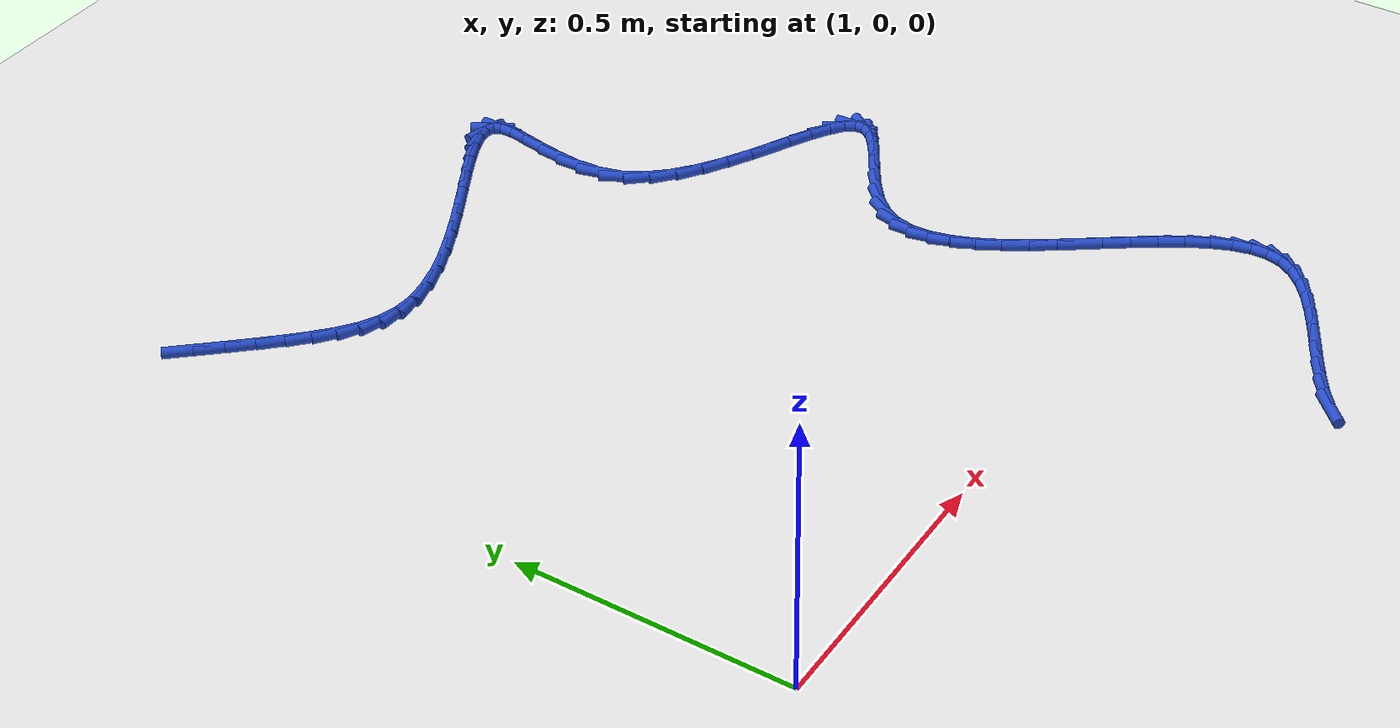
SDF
<sdf version="1.6">
 <world name="default">
  <model name="ground_plane">
   <static>1</static>
   <link name="link">
    <collision name="collision">
     <geometry><plane><normal>0 0 1</normal><size>100 100</size></plane></geometry>
     <surface><friction><ode><mu>100</mu><mu2>50</mu2></ode></friction></surface>
    </collision>
    <visual name="visual">
     <cast_shadows>0</cast_shadows>
     <geometry><plane><normal>0 0 1</normal><size>100 100</size></plane></geometry>
     <material>
      <script><uri>file://media/materials/scripts/gazebo.material</uri><name>Gazebo/WhiteGlow</name></script>
     </material>
    </visual>
   </link>
  </model>
  <model name="line">
   <link name="link_63">
    <pose>1.1196661437695878 1.259780612531161 0.01 0 1.57 -0.8517273252612294</pose>
    <collision name="collision">
     <geometry><cylinder><radius>0.01</radius><length>0.08</length></cylinder></geometry>
    </collision>
    <visual name="visual">
     <material>
      <script><name>Gazebo/Blue</name><uri>file://media/materials/scripts/gazebo.material</uri></script>
     </material>
     <geometry><cylinder><radius>0.01</radius><length>0.08</length></cylinder></geometry>
    </visual>
   </link>
   <link name="link_64">
    <pose>1.1540906207296566 1.22045732162636 0.01 0 1.57 -0.8469313317519686</pose>
    <collision name="collision">
     <geometry><cylinder><radius>0.01</radius><length>0.08</length></cylinder></geometry>
    </collision>
    <visual name="visual">
     <material>
      <script><name>Gazebo/Blue</name><uri>file://media/materials/scripts/gazebo.material</uri></script>
     </material>
     <geometry><cylinder><radius>0.01</radius><length>0.08</length></cylinder></geometry>
    </visual>
   </link>
   <link name="link_65">
    <pose>1.1886756391678166 1.181330869631078 0.01 0 1.57 -0.8315641580807647</pose>
    <collision name="collision">
     <geometry><cylinder><radius>0.01</radius><length>0.08</length></cylinder></geometry>
    </collision>
    <visual name="visual">
     <material>
      <script><name>Gazebo/Blue</name><uri>file://media/materials/scripts/gazebo.material</uri></script>
     </material>
     <geometry><cylinder><radius>0.01</radius><length>0.08</length></cylinder></geometry>
    </visual>
   </link>
   <link name="link_66">
    <pose>1.2228370313096963 1.1438601588218202 0.01 0 1.57 -0.8031941429486126</pose>
    <collision name="collision">
     <geometry><cylinder><radius>0.01</radius><length>0.08</length></cylinder></geometry>
    </collision>
    <visual name="visual">
     <material>
      <script><name>Gazebo/Blue</name><uri>file://media/materials/scripts/gazebo.material</uri></script>
     </material>
     <geometry><cylinder><radius>0.01</radius><length>0.08</length></cylinder></geometry>
    </visual>
   </link>
   <link name="link_67">
    <pose>1.255991949229332 1.1095036826678506 0.01 0 1.57 -0.7515997567067627</pose>
    <collision name="collision">
     <geometry><cylinder><radius>0.01</radius><length>0.08</length></cylinder></geometry>
    </collision>
    <visual name="visual">
     <material>
      <script><name>Gazebo/Blue</name><uri>file://media/materials/scripts/gazebo.material</uri></script>
     </material>
     <geometry><cylinder><radius>0.01</radius><length>0.08</length></cylinder></geometry>
    </visual>
   </link>
   <link name="link_68">
    <pose>1.288010272824801 1.0795797076148563 0.01 0 1.57 -0.6558354673367464</pose>
    <collision name="collision">
     <geometry><cylinder><radius>0.01</radius><length>0.08</length></cylinder></geometry>
    </collision>
    <visual name="visual">
     <material>
      <script><name>Gazebo/Blue</name><uri>file://media/materials/scripts/gazebo.material</uri></script>
     </material>
     <geometry><cylinder><radius>0.01</radius><length>0.08</length></cylinder></geometry>
    </visual>
   </link>
   <link name="link_69">
    <pose>1.3198740438421646 1.0550620212905804 0.01 0 1.57 -0.5055757949903101</pose>
    <collision name="collision">
     <geometry><cylinder><radius>0.01</radius><length>0.08</length></cylinder></geometry>
    </collision>
    <visual name="visual">
     <material>
      <script><name>Gazebo/Blue</name><uri>file://media/materials/scripts/gazebo.material</uri></script>
     </material>
     <geometry><cylinder><radius>0.01</radius><length>0.08</length></cylinder></geometry>
    </visual>
   </link>
   <link name="link_70">
    <pose>1.3527329929591088 1.0368724716837165 0.01 0 1.57 -0.30290723312077716</pose>
    <collision name="collision">
     <geometry><cylinder><radius>0.01</radius><length>0.08</length></cylinder></geometry>
    </collision>
    <visual name="visual">
     <material>
      <script><name>Gazebo/Blue</name><uri>file://media/materials/scripts/gazebo.material</uri></script>
     </material>
     <geometry><cylinder><radius>0.01</radius><length>0.08</length></cylinder></geometry>
    </visual>
   </link>
   <link name="link_71">
    <pose>1.3877368508533174 1.0259329067829583 0.01 0 1.57 -0.07330064190420355</pose>
    <collision name="collision">
     <geometry><cylinder><radius>0.01</radius><length>0.08</length></cylinder></geometry>
    </collision>
    <visual name="visual">
     <material>
      <script><name>Gazebo/Blue</name><uri>file://media/materials/scripts/gazebo.material</uri></script>
     </material>
     <geometry><cylinder><radius>0.01</radius><length>0.08</length></cylinder></geometry>
    </visual>
   </link>
   <link name="link_72">
    <pose>1.4259983332006394 1.0231232817397402 0.01 0 1.57 0.12258889698481831</pose>
    <collision name="collision">
     <geometry><cylinder><radius>0.01</radius><length>0.08</length></cylinder></geometry>
    </collision>
    <visual name="visual">
     <material>
      <script><name>Gazebo/Blue</name><uri>file://media/materials/scripts/gazebo.material</uri></script>
     </material>
     <geometry><cylinder><radius>0.01</radius><length>0.08</length></cylinder></geometry>
    </visual>
   </link>
   <link name="link_73">
    <pose>1.4676904681079848 1.0282600321473152 0.01 0 1.57 0.2598197769352194</pose>
    <collision name="collision">
     <geometry><cylinder><radius>0.01</radius><length>0.08</length></cylinder></geometry>
    </collision>
    <visual name="visual">
     <material>
      <script><name>Gazebo/Blue</name><uri>file://media/materials/scripts/gazebo.material</uri></script>
     </material>
     <geometry><cylinder><radius>0.01</radius><length>0.08</length></cylinder></geometry>
    </visual>
   </link>
   <link name="link_74">
    <pose>1.5119947275682937 1.0400373702609884 0.01 0 1.57 0.35475852176778405</pose>
    <collision name="collision">
     <geometry><cylinder><radius>0.01</radius><length>0.08</length></cylinder></geometry>
    </collision>
    <visual name="visual">
     <material>
      <script><name>Gazebo/Blue</name><uri>file://media/materials/scripts/gazebo.material</uri></script>
     </material>
     <geometry><cylinder><radius>0.01</radius><length>0.08</length></cylinder></geometry>
    </visual>
   </link>
   <link name="link_75">
    <pose>1.558045185475301 1.0570958641172918 0.01 0 1.57 0.4203950614659597</pose>
    <collision name="collision">
     <geometry><cylinder><radius>0.01</radius><length>0.08</length></cylinder></geometry>
    </collision>
    <visual name="visual">
     <material>
      <script><name>Gazebo/Blue</name><uri>file://media/materials/scripts/gazebo.material</uri></script>
     </material>
     <geometry><cylinder><radius>0.01</radius><length>0.08</length></cylinder></geometry>
    </visual>
   </link>
   <link name="link_76">
    <pose>1.6049759157227415 1.0780760817527586 0.01 0 1.57 0.4648392906981698</pose>
    <collision name="collision">
     <geometry><cylinder><radius>0.01</radius><length>0.08</length></cylinder></geometry>
    </collision>
    <visual name="visual">
     <material>
      <script><name>Gazebo/Blue</name><uri>file://media/materials/scripts/gazebo.material</uri></script>
     </material>
     <geometry><cylinder><radius>0.01</radius><length>0.08</length></cylinder></geometry>
    </visual>
   </link>
   <link name="link_77">
    <pose>1.6519209922043516 1.1016185912039218 0.01 0 1.57 0.49269249067421395</pose>
    <collision name="collision">
     <geometry><cylinder><radius>0.01</radius><length>0.08</length></cylinder></geometry>
    </collision>
    <visual name="visual">
     <material>
      <script><name>Gazebo/Blue</name><uri>file://media/materials/scripts/gazebo.material</uri></script>
     </material>
     <geometry><cylinder><radius>0.01</radius><length>0.08</length></cylinder></geometry>
    </visual>
   </link>
   <link name="link_78">
    <pose>1.6980144888138644 1.1263639605073132 0.01 0 1.57 0.5059866009592399</pose>
    <collision name="collision">
     <geometry><cylinder><radius>0.01</radius><length>0.08</length></cylinder></geometry>
    </collision>
    <visual name="visual">
     <material>
      <script><name>Gazebo/Blue</name><uri>file://media/materials/scripts/gazebo.material</uri></script>
     </material>
     <geometry><cylinder><radius>0.01</radius><length>0.08</length></cylinder></geometry>
    </visual>
   </link>
   <link name="link_79">
    <pose>1.7423904794450153 1.1509527576994658 0.01 0 1.57 0.5044379558841604</pose>
    <collision name="collision">
     <geometry><cylinder><radius>0.01</radius><length>0.08</length></cylinder></geometry>
    </collision>
    <visual name="visual">
     <material>
      <script><name>Gazebo/Blue</name><uri>file://media/materials/scripts/gazebo.material</uri></script>
     </material>
     <geometry><cylinder><radius>0.01</radius><length>0.08</length></cylinder></geometry>
    </visual>
   </link>
   <link name="link_80">
    <pose>1.7841830379915395 1.174025550816912 0.01 0 1.57 0.48481944742248434</pose>
    <collision name="collision">
     <geometry><cylinder><radius>0.01</radius><length>0.08</length></cylinder></geometry>
    </collision>
    <visual name="visual">
     <material>
      <script><name>Gazebo/Blue</name><uri>file://media/materials/scripts/gazebo.material</uri></script>
     </material>
     <geometry><cylinder><radius>0.01</radius><length>0.08</length></cylinder></geometry>
    </visual>
   </link>
   <link name="link_81">
    <pose>1.8225262383471723 1.1942229078961848 0.01 0 1.57 0.43862331797547005</pose>
    <collision name="collision">
     <geometry><cylinder><radius>0.01</radius><length>0.08</length></cylinder></geometry>
    </collision>
    <visual name="visual">
     <material>
      <script><name>Gazebo/Blue</name><uri>file://media/materials/scripts/gazebo.material</uri></script>
     </material>
     <geometry><cylinder><radius>0.01</radius><length>0.08</length></cylinder></geometry>
    </visual>
   </link>
   <link name="link_82">
    <pose>1.8565541544056472 1.210185396973816 0.01 0 1.57 0.3450452889099674</pose>
    <collision name="collision">
     <geometry><cylinder><radius>0.01</radius><length>0.08</length></cylinder></geometry>
    </collision>
    <visual name="visual">
     <material>
      <script><name>Gazebo/Blue</name><uri>file://media/materials/scripts/gazebo.material</uri></script>
     </material>
     <geometry><cylinder><radius>0.01</radius><length>0.08</length></cylinder></geometry>
    </visual>
   </link>
   <link name="link_83">
    <pose>1.8854008600607002 1.2205535860863392 0.01 0 1.57 0.14865495063836787</pose>
    <collision name="collision">
     <geometry><cylinder><radius>0.01</radius><length>0.08</length></cylinder></geometry>
    </collision>
    <visual name="visual">
     <material>
      <script><name>Gazebo/Blue</name><uri>file://media/materials/scripts/gazebo.material</uri></script>
     </material>
     <geometry><cylinder><radius>0.01</radius><length>0.08</length></cylinder></geometry>
    </visual>
   </link>
   <link name="link_84">
    <pose>1.9082004292060661 1.2239680432702866 0.01 0 1.57 -0.2991055184764286</pose>
    <collision name="collision">
     <geometry><cylinder><radius>0.01</radius><length>0.08</length></cylinder></geometry>
    </collision>
    <visual name="visual">
     <material>
      <script><name>Gazebo/Blue</name><uri>file://media/materials/scripts/gazebo.material</uri></script>
     </material>
     <geometry><cylinder><radius>0.01</radius><length>0.08</length></cylinder></geometry>
    </visual>
   </link>
   <link name="link_85">
    <pose>1.9240869357354793 1.2190693365621903 0.01 0 1.57 -1.062956345246637</pose>
    <collision name="collision">
     <geometry><cylinder><radius>0.01</radius><length>0.08</length></cylinder></geometry>
    </collision>
    <visual name="visual">
     <material>
      <script><name>Gazebo/Blue</name><uri>file://media/materials/scripts/gazebo.material</uri></script>
     </material>
     <geometry><cylinder><radius>0.01</radius><length>0.08</length></cylinder></geometry>
    </visual>
   </link>
   <link name="link_86">
    <pose>1.9321956249995975 1.2044991545221495 0.01 0 1.57 -1.5571422949638465</pose>
    <collision name="collision">
     <geometry><cylinder><radius>0.01</radius><length>0.08</length></cylinder></geometry>
    </collision>
    <visual name="visual">
     <material>
      <script><name>Gazebo/Blue</name><uri>file://media/materials/scripts/gazebo.material</uri></script>
     </material>
     <geometry><cylinder><radius>0.01</radius><length>0.08</length></cylinder></geometry>
    </visual>
   </link>
   <link name="link_87">
    <pose>1.9325337994138625 1.1797333269181722 0.01 0 1.57 1.4209852962568719</pose>
    <collision name="collision">
     <geometry><cylinder><radius>0.01</radius><length>0.08</length></cylinder></geometry>
    </collision>
    <visual name="visual">
     <material>
      <script><name>Gazebo/Blue</name><uri>file://media/materials/scripts/gazebo.material</uri></script>
     </material>
     <geometry><cylinder><radius>0.01</radius><length>0.08</length></cylinder></geometry>
    </visual>
   </link>
   <link name="link_88">
    <pose>1.9275266154406632 1.1465604125548285 0.01 0 1.57 1.3823745064760786</pose>
    <collision name="collision">
     <geometry><cylinder><radius>0.01</radius><length>0.08</length></cylinder></geometry>
    </collision>
    <visual name="visual">
     <material>
      <script><name>Gazebo/Blue</name><uri>file://media/materials/scripts/gazebo.material</uri></script>
     </material>
     <geometry><cylinder><radius>0.01</radius><length>0.08</length></cylinder></geometry>
    </visual>
   </link>
   <link name="link_89">
    <pose>1.9200148366346474 1.107166507296994 0.01 0 1.57 1.4070487390612</pose>
    <collision name="collision">
     <geometry><cylinder><radius>0.01</radius><length>0.08</length></cylinder></geometry>
    </collision>
    <visual name="visual">
     <material>
      <script><name>Gazebo/Blue</name><uri>file://media/materials/scripts/gazebo.material</uri></script>
     </material>
     <geometry><cylinder><radius>0.01</radius><length>0.08</length></cylinder></geometry>
    </visual>
   </link>
   <link name="link_90">
    <pose>1.912839226550463 1.0637377070095435 0.01 0 1.57 1.4827101570873344</pose>
    <collision name="collision">
     <geometry><cylinder><radius>0.01</radius><length>0.08</length></cylinder></geometry>
    </collision>
    <visual name="visual">
     <material>
      <script><name>Gazebo/Blue</name><uri>file://media/materials/scripts/gazebo.material</uri></script>
     </material>
     <geometry><cylinder><radius>0.01</radius><length>0.08</length></cylinder></geometry>
    </visual>
   </link>
   <link name="link_91">
    <pose>1.9088405487427584 1.0184601075573525 0.01 0 1.57 -1.5258998498332292</pose>
    <collision name="collision">
     <geometry><cylinder><radius>0.01</radius><length>0.08</length></cylinder></geometry>
    </collision>
    <visual name="visual">
     <material>
      <script><name>Gazebo/Blue</name><uri>file://media/materials/scripts/gazebo.material</uri></script>
     </material>
     <geometry><cylinder><radius>0.01</radius><length>0.08</length></cylinder></geometry>
    </visual>
   </link>
   <link name="link_92">
    <pose>1.9108595667661794 0.9735198048052948 0.01 0 1.57 -1.319852030856648</pose>
    <collision name="collision">
     <geometry><cylinder><radius>0.01</radius><length>0.08</length></cylinder></geometry>
    </collision>
    <visual name="visual">
     <material>
      <script><name>Gazebo/Blue</name><uri>file://media/materials/scripts/gazebo.material</uri></script>
     </material>
     <geometry><cylinder><radius>0.01</radius><length>0.08</length></cylinder></geometry>
    </visual>
   </link>
   <link name="link_93">
    <pose>1.9217335299912128 0.9311010535322226 0.01 0 1.57 -1.0645797067237839</pose>
    <collision name="collision">
     <geometry><cylinder><radius>0.01</radius><length>0.08</length></cylinder></geometry>
    </collision>
    <visual name="visual">
     <material>
      <script><name>Gazebo/Blue</name><uri>file://media/materials/scripts/gazebo.material</uri></script>
     </material>
     <geometry><cylinder><radius>0.01</radius><length>0.08</length></cylinder></geometry>
    </visual>
   </link>
   <link name="link_94">
    <pose>1.9430148482370886 0.8927149792694061 0.01 0 1.57 -0.854466103318729</pose>
    <collision name="collision">
     <geometry><cylinder><radius>0.01</radius><length>0.08</length></cylinder></geometry>
    </collision>
    <visual name="visual">
     <material>
      <script><name>Gazebo/Blue</name><uri>file://media/materials/scripts/gazebo.material</uri></script>
     </material>
     <geometry><cylinder><radius>0.01</radius><length>0.08</length></cylinder></geometry>
    </visual>
   </link>
   <link name="link_95">
    <pose>1.9730633528307617 0.8582001111867703 0.01 0 1.57 -0.7025234889267968</pose>
    <collision name="collision">
     <geometry><cylinder><radius>0.01</radius><length>0.08</length></cylinder></geometry>
    </collision>
    <visual name="visual">
     <material>
      <script><name>Gazebo/Blue</name><uri>file://media/materials/scripts/gazebo.material</uri></script>
     </material>
     <geometry><cylinder><radius>0.01</radius><length>0.08</length></cylinder></geometry>
    </visual>
   </link>
   <link name="link_96">
    <pose>2.0097514031193477 0.8271395911985409 0.01 0 1.57 -0.5972938314824511</pose>
    <collision name="collision">
     <geometry><cylinder><radius>0.01</radius><length>0.08</length></cylinder></geometry>
    </collision>
    <visual name="visual">
     <material>
      <script><name>Gazebo/Blue</name><uri>file://media/materials/scripts/gazebo.material</uri></script>
     </material>
     <geometry><cylinder><radius>0.01</radius><length>0.08</length></cylinder></geometry>
    </visual>
   </link>
   <link name="link_97">
    <pose>2.050951358449961 0.7991165612189453 0.01 0 1.57 -0.5277023720251557</pose>
    <collision name="collision">
     <geometry><cylinder><radius>0.01</radius><length>0.08</length></cylinder></geometry>
    </collision>
    <visual name="visual">
     <material>
      <script><name>Gazebo/Blue</name><uri>file://media/materials/scripts/gazebo.material</uri></script>
     </material>
     <geometry><cylinder><radius>0.01</radius><length>0.08</length></cylinder></geometry>
    </visual>
   </link>
   <link name="link_98">
    <pose>2.0945355781697157 0.77371416316221 0.01 0 1.57 -0.48669906099136934</pose>
    <collision name="collision">
     <geometry><cylinder><radius>0.01</radius><length>0.08</length></cylinder></geometry>
    </collision>
    <visual name="visual">
     <material>
      <script><name>Gazebo/Blue</name><uri>file://media/materials/scripts/gazebo.material</uri></script>
     </material>
     <geometry><cylinder><radius>0.01</radius><length>0.08</length></cylinder></geometry>
    </visual>
   </link>
   <link name="link_99">
    <pose>2.138376421625728 0.7505155389425611 0.01 0 1.57 -0.47174975126809543</pose>
    <collision name="collision">
     <geometry><cylinder><radius>0.01</radius><length>0.08</length></cylinder></geometry>
    </collision>
    <visual name="visual">
     <material>
      <script><name>Gazebo/Blue</name><uri>file://media/materials/scripts/gazebo.material</uri></script>
     </material>
     <geometry><cylinder><radius>0.01</radius><length>0.08</length></cylinder></geometry>
    </visual>
   </link>
   <link name="link_100">
    <pose>2.1803462481651117 0.7291038304742259 0.01 0 1.57 -0.4856491099645599</pose>
    <collision name="collision">
     <geometry><cylinder><radius>0.01</radius><length>0.08</length></cylinder></geometry>
    </collision>
    <visual name="visual">
     <material>
      <script><name>Gazebo/Blue</name><uri>file://media/materials/scripts/gazebo.material</uri></script>
     </material>
     <geometry><cylinder><radius>0.01</radius><length>0.08</length></cylinder></geometry>
    </visual>
   </link>
   <link name="link_101">
    <pose>2.218317417134983 0.7090621796714306 0.01 0 1.57 -0.5399928928222548</pose>
    <collision name="collision">
     <geometry><cylinder><radius>0.01</radius><length>0.08</length></cylinder></geometry>
    </collision>
    <visual name="visual">
     <material>
      <script><name>Gazebo/Blue</name><uri>file://media/materials/scripts/gazebo.material</uri></script>
     </material>
     <geometry><cylinder><radius>0.01</radius><length>0.08</length></cylinder></geometry>
    </visual>
   </link>
   <link name="link_102">
    <pose>2.250162287882453 0.6899737284484023 0.01 0 1.57 -0.666398332927112</pose>
    <collision name="collision">
     <geometry><cylinder><radius>0.01</radius><length>0.08</length></cylinder></geometry>
    </collision>
    <visual name="visual">
     <material>
      <script><name>Gazebo/Blue</name><uri>file://media/materials/scripts/gazebo.material</uri></script>
     </material>
     <geometry><cylinder><radius>0.01</radius><length>0.08</length></cylinder></geometry>
    </visual>
   </link>
   <link name="link_103">
    <pose>2.273753219754641 0.6714216187193672 0.01 0 1.57 -0.9489970044118934</pose>
    <collision name="collision">
     <geometry><cylinder><radius>0.01</radius><length>0.08</length></cylinder></geometry>
    </collision>
    <visual name="visual">
     <material>
      <script><name>Gazebo/Blue</name><uri>file://media/materials/scripts/gazebo.material</uri></script>
     </material>
     <geometry><cylinder><radius>0.01</radius><length>0.08</length></cylinder></geometry>
    </visual>
   </link>
   <link name="link_104">
    <pose>2.2869625720986595 0.6529889923985526 0.01 0 1.57 -1.533433470176664</pose>
    <collision name="collision">
     <geometry><cylinder><radius>0.01</radius><length>0.08</length></cylinder></geometry>
    </collision>
    <visual name="visual">
     <material>
      <script><name>Gazebo/Blue</name><uri>file://media/materials/scripts/gazebo.material</uri></script>
     </material>
     <geometry><cylinder><radius>0.01</radius><length>0.08</length></cylinder></geometry>
    </visual>
   </link>
   <link name="link_105">
    <pose>2.2876627042616233 0.6342589914001844 0.01 0 1.57 0.9660560665234865</pose>
    <collision name="collision">
     <geometry><cylinder><radius>0.01</radius><length>0.08</length></cylinder></geometry>
    </collision>
    <visual name="visual">
     <material>
      <script><name>Gazebo/Blue</name><uri>file://media/materials/scripts/gazebo.material</uri></script>
     </material>
     <geometry><cylinder><radius>0.01</radius><length>0.08</length></cylinder></geometry>
    </visual>
   </link>
   <link name="link_106">
    <pose>2.274234767750406 0.6148297064264654 0.01 0 1.57 0.6774499814278858</pose>
    <collision name="collision">
     <geometry><cylinder><radius>0.01</radius><length>0.08</length></cylinder></geometry>
    </collision>
    <visual name="visual">
     <material>
      <script><name>Gazebo/Blue</name><uri>file://media/materials/scripts/gazebo.material</uri></script>
     </material>
     <geometry><cylinder><radius>0.01</radius><length>0.08</length></cylinder></geometry>
    </visual>
   </link>
   <link name="link_107">
    <pose>2.248852215927895 0.5944106495435049 0.01 0 1.57 0.5743889535758605</pose>
    <collision name="collision">
     <geometry><cylinder><radius>0.01</radius><length>0.08</length></cylinder></geometry>
    </collision>
    <visual name="visual">
     <material>
      <script><name>Gazebo/Blue</name><uri>file://media/materials/scripts/gazebo.material</uri></script>
     </material>
     <geometry><cylinder><radius>0.01</radius><length>0.08</length></cylinder></geometry>
    </visual>
   </link>
   <link name="link_108">
    <pose>2.2154008299132024 0.5727616426032087 0.01 0 1.57 0.550967925851253</pose>
    <collision name="collision">
     <geometry><cylinder><radius>0.01</radius><length>0.08</length></cylinder></geometry>
    </collision>
    <visual name="visual">
     <material>
      <script><name>Gazebo/Blue</name><uri>file://media/materials/scripts/gazebo.material</uri></script>
     </material>
     <geometry><cylinder><radius>0.01</radius><length>0.08</length></cylinder></geometry>
    </visual>
   </link>
   <link name="link_109">
    <pose>2.177774741720348 0.5496427528145611 0.01 0 1.57 0.5798792563117053</pose>
    <collision name="collision">
     <geometry><cylinder><radius>0.01</radius><length>0.08</length></cylinder></geometry>
    </collision>
    <visual name="visual">
     <material>
      <script><name>Gazebo/Blue</name><uri>file://media/materials/scripts/gazebo.material</uri></script>
     </material>
     <geometry><cylinder><radius>0.01</radius><length>0.08</length></cylinder></geometry>
    </visual>
   </link>
   <link name="link_110">
    <pose>2.1398680833633534 0.5248140473865455 0.01 0 1.57 0.6629670408945193</pose>
    <collision name="collision">
     <geometry><cylinder><radius>0.01</radius><length>0.08</length></cylinder></geometry>
    </collision>
    <visual name="visual">
     <material>
      <script><name>Gazebo/Blue</name><uri>file://media/materials/scripts/gazebo.material</uri></script>
     </material>
     <geometry><cylinder><radius>0.01</radius><length>0.08</length></cylinder></geometry>
    </visual>
   </link>
   <link name="link_111">
    <pose>2.10557498685624 0.4980355935281464 0.01 0 1.57 0.8244516749144735</pose>
    <collision name="collision">
     <geometry><cylinder><radius>0.01</radius><length>0.08</length></cylinder></geometry>
    </collision>
    <visual name="visual">
     <material>
      <script><name>Gazebo/Blue</name><uri>file://media/materials/scripts/gazebo.material</uri></script>
     </material>
     <geometry><cylinder><radius>0.01</radius><length>0.08</length></cylinder></geometry>
    </visual>
   </link>
   <link name="link_112">
    <pose>2.0787858464673623 0.4690678430588624 0.01 0 1.57 1.0801897163803678</pose>
    <collision name="collision">
     <geometry><cylinder><radius>0.01</radius><length>0.08</length></cylinder></geometry>
    </collision>
    <visual name="visual">
     <material>
      <script><name>Gazebo/Blue</name><uri>file://media/materials/scripts/gazebo.material</uri></script>
     </material>
     <geometry><cylinder><radius>0.01</radius><length>0.08</length></cylinder></geometry>
    </visual>
   </link>
   <link name="link_113">
    <pose>2.062086507754452 0.4378054846341893 0.01 0 1.57 1.356950147122495</pose>
    <collision name="collision">
     <geometry><cylinder><radius>0.01</radius><length>0.08</length></cylinder></geometry>
    </collision>
    <visual name="visual">
     <material>
      <script><name>Gazebo/Blue</name><uri>file://media/materials/scripts/gazebo.material</uri></script>
     </material>
     <geometry><cylinder><radius>0.01</radius><length>0.08</length></cylinder></geometry>
    </visual>
   </link>
   <link name="link_114">
    <pose>2.054848021469509 0.4044740062730968 0.01 0 1.57 -1.5392903261945814</pose>
    <collision name="collision">
     <geometry><cylinder><radius>0.01</radius><length>0.08</length></cylinder></geometry>
    </collision>
    <visual name="visual">
     <material>
      <script><name>Gazebo/Blue</name><uri>file://media/materials/scripts/gazebo.material</uri></script>
     </material>
     <geometry><cylinder><radius>0.01</radius><length>0.08</length></cylinder></geometry>
    </visual>
   </link>
   <link name="link_115">
    <pose>2.0559550379445835 0.36934894614053365 0.01 0 1.57 -1.3470812217174384</pose>
    <collision name="collision">
     <geometry><cylinder><radius>0.01</radius><length>0.08</length></cylinder></geometry>
    </collision>
    <visual name="visual">
     <material>
      <script><name>Gazebo/Blue</name><uri>file://media/materials/scripts/gazebo.material</uri></script>
     </material>
     <geometry><cylinder><radius>0.01</radius><length>0.08</length></cylinder></geometry>
    </visual>
   </link>
   <link name="link_116">
    <pose>2.064292207511723 0.3327058424014473 0.01 0 1.57 -1.2063711967925868</pose>
    <collision name="collision">
     <geometry><cylinder><radius>0.01</radius><length>0.08</length></cylinder></geometry>
    </collision>
    <visual name="visual">
     <material>
      <script><name>Gazebo/Blue</name><uri>file://media/materials/scripts/gazebo.material</uri></script>
     </material>
     <geometry><cylinder><radius>0.01</radius><length>0.08</length></cylinder></geometry>
    </visual>
   </link>
   <link name="link_117">
    <pose>2.0787441805029787 0.29482023322078454 0.01 0 1.57 -1.1066312332013204</pose>
    <collision name="collision">
     <geometry><cylinder><radius>0.01</radius><length>0.08</length></cylinder></geometry>
    </collision>
    <visual name="visual">
     <material>
      <script><name>Gazebo/Blue</name><uri>file://media/materials/scripts/gazebo.material</uri></script>
     </material>
     <geometry><cylinder><radius>0.01</radius><length>0.08</length></cylinder></geometry>
    </visual>
   </link>
   <link name="link_118">
    <pose>2.098195607250398 0.2559676567634952 0.01 0 1.57 -1.03767654073569</pose>
    <collision name="collision">
     <geometry><cylinder><radius>0.01</radius><length>0.08</length></cylinder></geometry>
    </collision>
    <visual name="visual">
     <material>
      <script><name>Gazebo/Blue</name><uri>file://media/materials/scripts/gazebo.material</uri></script>
     </material>
     <geometry><cylinder><radius>0.01</radius><length>0.08</length></cylinder></geometry>
    </visual>
   </link>
   <link name="link_119">
    <pose>2.1215311380860307 0.2164236511945261 0.01 0 1.57 -0.9921313187321692</pose>
    <collision name="collision">
     <geometry><cylinder><radius>0.01</radius><length>0.08</length></cylinder></geometry>
    </collision>
    <visual name="visual">
     <material>
      <script><name>Gazebo/Blue</name><uri>file://media/materials/scripts/gazebo.material</uri></script>
     </material>
     <geometry><cylinder><radius>0.01</radius><length>0.08</length></cylinder></geometry>
    </visual>
   </link>
   <link name="link_120">
    <pose>2.1476354233419266 0.17646375467882522 0.01 0 1.57 -0.9653194521260604</pose>
    <collision name="collision">
     <geometry><cylinder><radius>0.01</radius><length>0.08</length></cylinder></geometry>
    </collision>
    <visual name="visual">
     <material>
      <script><name>Gazebo/Blue</name><uri>file://media/materials/scripts/gazebo.material</uri></script>
     </material>
     <geometry><cylinder><radius>0.01</radius><length>0.08</length></cylinder></geometry>
    </visual>
   </link>
   <link name="link_121">
    <pose>2.1753931133501347 0.1363635053813403 0.01 0 1.57 -0.9547133920569159</pose>
    <collision name="collision">
     <geometry><cylinder><radius>0.01</radius><length>0.08</length></cylinder></geometry>
    </collision>
    <visual name="visual">
     <material>
      <script><name>Gazebo/Blue</name><uri>file://media/materials/scripts/gazebo.material</uri></script>
     </material>
     <geometry><cylinder><radius>0.01</radius><length>0.08</length></cylinder></geometry>
    </visual>
   </link>
   <link name="link_122">
    <pose>2.203688858442706 0.09639844146701813 0.01 0 1.57 -0.9595545268301882</pose>
    <collision name="collision">
     <geometry><cylinder><radius>0.01</radius><length>0.08</length></cylinder></geometry>
    </collision>
    <visual name="visual">
     <material>
      <script><name>Gazebo/Blue</name><uri>file://media/materials/scripts/gazebo.material</uri></script>
     </material>
     <geometry><cylinder><radius>0.01</radius><length>0.08</length></cylinder></geometry>
    </visual>
   </link>
   <link name="link_123">
    <pose>2.2314073089516855 0.05684410110080863 0.01 0 1.57 -0.9807703069034696</pose>
    <collision name="collision">
     <geometry><cylinder><radius>0.01</radius><length>0.08</length></cylinder></geometry>
    </collision>
    <visual name="visual">
     <material>
      <script><name>Gazebo/Blue</name><uri>file://media/materials/scripts/gazebo.material</uri></script>
     </material>
     <geometry><cylinder><radius>0.01</radius><length>0.08</length></cylinder></geometry>
    </visual>
   </link>
   <link name="link_124">
    <pose>2.2574331152091265 0.01797602244765866 0.01 0 1.57 -1.021232158274191</pose>
    <collision name="collision">
     <geometry><cylinder><radius>0.01</radius><length>0.08</length></cylinder></geometry>
    </collision>
    <visual name="visual">
     <material>
      <script><name>Gazebo/Blue</name><uri>file://media/materials/scripts/gazebo.material</uri></script>
     </material>
     <geometry><cylinder><radius>0.01</radius><length>0.08</length></cylinder></geometry>
    </visual>
   </link>
   <link name="link_125">
    <pose>2.280650927547075 -0.019930256327484033 0.01 0 1.57 -1.0864246199546372</pose>
    <collision name="collision">
     <geometry><cylinder><radius>0.01</radius><length>0.08</length></cylinder></geometry>
    </collision>
    <visual name="visual">
     <material>
      <script><name>Gazebo/Blue</name><uri>file://media/materials/scripts/gazebo.material</uri></script>
     </material>
     <geometry><cylinder><radius>0.01</radius><length>0.08</length></cylinder></geometry>
    </visual>
   </link>
   <link name="link_126">
    <pose>2.2999453962975833 -0.05659919705967244 0.01 0 1.57 -1.185557792726552</pose>
    <collision name="collision">
     <geometry><cylinder><radius>0.01</radius><length>0.08</length></cylinder></geometry>
    </collision>
    <visual name="visual">
     <material>
      <script><name>Gazebo/Blue</name><uri>file://media/materials/scripts/gazebo.material</uri></script>
     </material>
     <geometry><cylinder><radius>0.01</radius><length>0.08</length></cylinder></geometry>
    </visual>
   </link>
   <link name="link_127">
    <pose>2.314201171792698 -0.09175526158395692 0.01 0 1.57 -1.3326036302188176</pose>
    <collision name="collision">
     <geometry><cylinder><radius>0.01</radius><length>0.08</length></cylinder></geometry>
    </collision>
    <visual name="visual">
     <material>
      <script><name>Gazebo/Blue</name><uri>file://media/materials/scripts/gazebo.material</uri></script>
     </material>
     <geometry><cylinder><radius>0.01</radius><length>0.08</length></cylinder></geometry>
    </visual>
   </link>
   <link name="link_128">
    <pose>2.3223029043644705 -0.12512291173539053 0.01 0 1.57 -1.5442133996509364</pose>
    <collision name="collision">
     <geometry><cylinder><radius>0.01</radius><length>0.08</length></cylinder></geometry>
    </collision>
    <visual name="visual">
     <material>
      <script><name>Gazebo/Blue</name><uri>file://media/materials/scripts/gazebo.material</uri></script>
     </material>
     <geometry><cylinder><radius>0.01</radius><length>0.08</length></cylinder></geometry>
    </visual>
   </link>
   <link name="link_129">
    <pose>2.323135244344949 -0.15642660934902547 0.01 0 1.57 1.3159029044844597</pose>
    <collision name="collision">
     <geometry><cylinder><radius>0.01</radius><length>0.08</length></cylinder></geometry>
    </collision>
    <visual name="visual">
     <material>
      <script><name>Gazebo/Blue</name><uri>file://media/materials/scripts/gazebo.material</uri></script>
     </material>
     <geometry><cylinder><radius>0.01</radius><length>0.08</length></cylinder></geometry>
    </visual>
   </link>
   <link name="link_130">
    <pose>2.315587938582745 -0.1853922145816334 0.01 0 1.57 1.0212802186406793</pose>
    <collision name="collision">
     <geometry><cylinder><radius>0.01</radius><length>0.08</length></cylinder></geometry>
    </collision>
    <visual name="visual">
     <material>
      <script><name>Gazebo/Blue</name><uri>file://media/materials/scripts/gazebo.material</uri></script>
     </material>
     <geometry><cylinder><radius>0.01</radius><length>0.08</length></cylinder></geometry>
    </visual>
   </link>
   <link name="link_131">
    <pose>2.2993189948181283 -0.21195637389430683 0.01 0 1.57 0.8015959741680325</pose>
    <collision name="collision">
     <geometry><cylinder><radius>0.01</radius><length>0.08</length></cylinder></geometry>
    </collision>
    <visual name="visual">
     <material>
      <script><name>Gazebo/Blue</name><uri>file://media/materials/scripts/gazebo.material</uri></script>
     </material>
     <geometry><cylinder><radius>0.01</radius><length>0.08</length></cylinder></geometry>
    </visual>
   </link>
   <link name="link_132">
    <pose>2.2755678975424987 -0.23648964056723654 0.01 0 1.57 0.6557826357097973</pose>
    <collision name="collision">
     <geometry><cylinder><radius>0.01</radius><length>0.08</length></cylinder></geometry>
    </collision>
    <visual name="visual">
     <material>
      <script><name>Gazebo/Blue</name><uri>file://media/materials/scripts/gazebo.material</uri></script>
     </material>
     <geometry><cylinder><radius>0.01</radius><length>0.08</length></cylinder></geometry>
    </visual>
   </link>
   <link name="link_133">
    <pose>2.24576896459422 -0.25941602394171537 0.01 0 1.57 0.5635100497996451</pose>
    <collision name="collision">
     <geometry><cylinder><radius>0.01</radius><length>0.08</length></cylinder></geometry>
    </collision>
    <visual name="visual">
     <material>
      <script><name>Gazebo/Blue</name><uri>file://media/materials/scripts/gazebo.material</uri></script>
     </material>
     <geometry><cylinder><radius>0.01</radius><length>0.08</length></cylinder></geometry>
    </visual>
   </link>
   <link name="link_134">
    <pose>2.211356513811658 -0.2811595333590355 0.01 0 1.57 0.5091369747385371</pose>
    <collision name="collision">
     <geometry><cylinder><radius>0.01</radius><length>0.08</length></cylinder></geometry>
    </collision>
    <visual name="visual">
     <material>
      <script><name>Gazebo/Blue</name><uri>file://media/materials/scripts/gazebo.material</uri></script>
     </material>
     <geometry><cylinder><radius>0.01</radius><length>0.08</length></cylinder></geometry>
    </visual>
   </link>
   <link name="link_135">
    <pose>2.1737648630331767 -0.30214417816048966 0.01 0 1.57 0.4834093301399237</pose>
    <collision name="collision">
     <geometry><cylinder><radius>0.01</radius><length>0.08</length></cylinder></geometry>
    </collision>
    <visual name="visual">
     <material>
      <script><name>Gazebo/Blue</name><uri>file://media/materials/scripts/gazebo.material</uri></script>
     </material>
     <geometry><cylinder><radius>0.01</radius><length>0.08</length></cylinder></geometry>
    </visual>
   </link>
   <link name="link_136">
    <pose>2.134428330097142 -0.322793967687369 0.01 0 1.57 0.48194740040677325</pose>
    <collision name="collision">
     <geometry><cylinder><radius>0.01</radius><length>0.08</length></cylinder></geometry>
    </collision>
    <visual name="visual">
     <material>
      <script><name>Gazebo/Blue</name><uri>file://media/materials/scripts/gazebo.material</uri></script>
     </material>
     <geometry><cylinder><radius>0.01</radius><length>0.08</length></cylinder></geometry>
    </visual>
   </link>
   <link name="link_137">
    <pose>2.0947812328419193 -0.3435329112809663 0.01 0 1.57 0.5041231421868259</pose>
    <collision name="collision">
     <geometry><cylinder><radius>0.01</radius><length>0.08</length></cylinder></geometry>
    </collision>
    <visual name="visual">
     <material>
      <script><name>Gazebo/Blue</name><uri>file://media/materials/scripts/gazebo.material</uri></script>
     </material>
     <geometry><cylinder><radius>0.01</radius><length>0.08</length></cylinder></geometry>
    </visual>
   </link>
   <link name="link_138">
    <pose>2.056257889105872 -0.36478501828257365 0.01 0 1.57 0.5527997663159712</pose>
    <collision name="collision">
     <geometry><cylinder><radius>0.01</radius><length>0.08</length></cylinder></geometry>
    </collision>
    <visual name="visual">
     <material>
      <script><name>Gazebo/Blue</name><uri>file://media/materials/scripts/gazebo.material</uri></script>
     </material>
     <geometry><cylinder><radius>0.01</radius><length>0.08</length></cylinder></geometry>
    </visual>
   </link>
   <link name="link_139">
    <pose>2.020292616727366 -0.3869742980334833 0.01 0 1.57 0.6348543164023271</pose>
    <collision name="collision">
     <geometry><cylinder><radius>0.01</radius><length>0.08</length></cylinder></geometry>
    </collision>
    <visual name="visual">
     <material>
      <script><name>Gazebo/Blue</name><uri>file://media/materials/scripts/gazebo.material</uri></script>
     </material>
     <geometry><cylinder><radius>0.01</radius><length>0.08</length></cylinder></geometry>
    </visual>
   </link>
   <link name="link_140">
    <pose>1.9883197335447647 -0.41052475987498804 0.01 0 1.57 0.762070087037076</pose>
    <collision name="collision">
     <geometry><cylinder><radius>0.01</radius><length>0.08</length></cylinder></geometry>
    </collision>
    <visual name="visual">
     <material>
      <script><name>Gazebo/Blue</name><uri>file://media/materials/scripts/gazebo.material</uri></script>
     </material>
     <geometry><cylinder><radius>0.01</radius><length>0.08</length></cylinder></geometry>
    </visual>
   </link>
  </model>
 </world>
</sdf>
